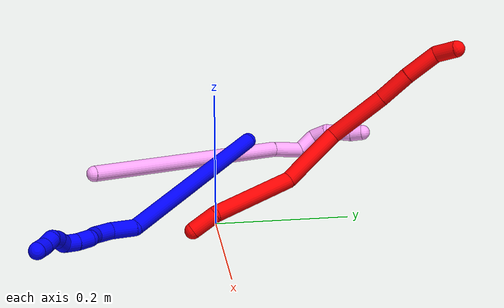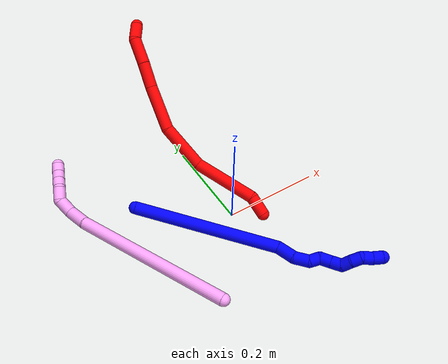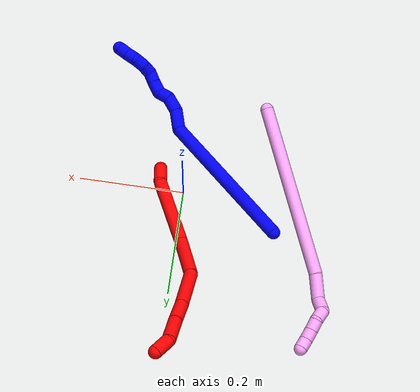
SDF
<sdf version="1.7">
 <world name="default">
  <model name="photoneo_s_sensor">
   <static>1</static>
   <pose>0 0 2 1.57079 1.57079 3.14159</pose>
   <link name="link">
    <inertial><mass>0.1</mass></inertial>
    <sensor name="sensor" type="depth">
     <update_rate>30</update_rate>
     <camera>
      <horizontal_fov>1.22</horizontal_fov>
      <image><width>1920</width><height>1200</height><format>B8G8R8</format></image>
      <clip><near>0.1</near><far>4</far></clip>
      <depth_camera><output>points</output></depth_camera>
     </camera>
     <plugin name="camera_plugin" filename="libgazebo_ros_depth_camera.so">
      <baseline>0.2</baseline>
      <alwaysOn>1</alwaysOn>
      <updateRate>0.0</updateRate>
      <cameraName>camera_ir</cameraName>
      <imageTopicName>/camera/color/image_raw</imageTopicName>
      <cameraInfoTopicName>/camera/color/camera_info</cameraInfoTopicName>
      <depthImageTopicName>/camera/depth/image_raw</depthImageTopicName>
      <depthImageCameraInfoTopicName>/camera/depth/camera_info</depthImageCameraInfoTopicName>
      <pointCloudTopicName>/camera/depth/points</pointCloudTopicName>
      <frameName>fr_optical</frameName>
      <pointCloudCutoff>0.1</pointCloudCutoff>
      <pointCloudCutoffMax>2.0</pointCloudCutoffMax>
      <distortionK1>0</distortionK1>
      <distortionK2>0</distortionK2>
      <distortionK3>0</distortionK3>
      <distortionT1>0</distortionT1>
      <distortionT2>0</distortionT2>
      <CxPrime>0</CxPrime>
      <Cx>0</Cx>
      <Cy>0</Cy>
      <focalLength>0</focalLength>
      <hackBaseline>0</hackBaseline>
     </plugin>
    </sensor>
   </link>
  </model>
  <model name="bin">
   <static>1</static>
   <link name="bottom">
    <collision name="collision-bottom">
     <pose>0 0 -0.01 0 -0 0</pose>
     <geometry><box><size>0.8 0.6 0.02</size></box></geometry>
     <surface>
      <friction><ode><mu>100</mu><mu2>100</mu2></ode></friction>
      <contact><collide_bitmask>65535</collide_bitmask></contact>
     </surface>
    </collision>
   </link>
   <link name="west_wall">
    <collision name="collision-west_wall">
     <pose>-0.41 0 0.1 0 -0 0</pose>
     <geometry><box><size>0.02 0.6 0.2</size></box></geometry>
     <surface>
      <friction><ode><mu>100</mu><mu2>100</mu2></ode></friction>
      <contact><collide_bitmask>65535</collide_bitmask></contact>
     </surface>
    </collision>
   </link>
   <link name="east_wall">
    <collision name="collision-east_wall">
     <pose>0.41 0 0.1 0 -0 0</pose>
     <geometry><box><size>0.02 0.6 0.2</size></box></geometry>
     <surface>
      <friction><ode><mu>100</mu><mu2>100</mu2></ode></friction>
      <contact><collide_bitmask>65535</collide_bitmask></contact>
     </surface>
    </collision>
   </link>
   <link name="south_wall">
    <collision name="collision-south_wall">
     <pose>0 -0.31 0.1 0 -0 0</pose>
     <geometry><box><size>0.8 0.02 0.2</size></box></geometry>
     <surface>
      <friction><ode><mu>100</mu><mu2>100</mu2></ode></friction>
      <contact><collide_bitmask>65535</collide_bitmask></contact>
     </surface>
    </collision>
   </link>
   <link name="north_wall">
    <collision name="collision-north_wall">
     <pose>0 0.31 0.1 0 -0 0</pose>
     <geometry><box><size>0.8 0.02 0.2</size></box></geometry>
     <surface>
      <friction><ode><mu>100</mu><mu2>100</mu2></ode></friction>
      <contact><collide_bitmask>65535</collide_bitmask></contact>
     </surface>
    </collision>
   </link>
  </model>
  <model name="1">
   <static>0</static>
   <link name="1">
    <collision name="collision-cylinder-e_1_1_4">
     <pose>0.108842 -0.064272 0.068833 0.75115 0.85752 0.356648</pose>
     <geometry><cylinder><radius>0.0125</radius><length>0.287858</length></cylinder></geometry>
     <surface>
      <friction><ode><mu>1.16</mu><mu2>1.16</mu2><slip1>0</slip1><slip2>0</slip2></ode></friction>
      <contact><ode><kp>1e+06</kp><kd>1</kd><max_vel>0</max_vel><min_depth>0.001</min_depth></ode></contact>
     </surface>
    </collision>
    <visual name="visual-cylinder-e_1_1_4">
     <pose>0.108842 -0.064272 0.068833 0.75115 0.85752 0.356648</pose>
     <geometry><cylinder><radius>0.0125</radius><length>0.287858</length></cylinder></geometry>
     <material><ambient>0 0 1 1</ambient></material>
    </visual>
    <collision name="collision-cylinder-e_2_4_5">
     <pose>0.226464 -0.144867 0.142081 1.30662 0.478909 0.369485</pose>
     <geometry><cylinder><radius>0.0125</radius><length>0.038105</length></cylinder></geometry>
     <surface>
      <friction><ode><mu>1.16</mu><mu2>1.16</mu2><slip1>0</slip1><slip2>0</slip2></ode></friction>
      <contact><ode><kp>1e+06</kp><kd>1</kd><max_vel>0</max_vel><min_depth>0.001</min_depth></ode></contact>
     </surface>
    </collision>
    <visual name="visual-cylinder-e_2_4_5">
     <pose>0.226464 -0.144867 0.142081 1.30662 0.478909 0.369485</pose>
     <geometry><cylinder><radius>0.0125</radius><length>0.038105</length></cylinder></geometry>
     <material><ambient>0 0 1 1</ambient></material>
    </visual>
    <collision name="collision-cylinder-e_3_5_6">
     <pose>0.243281 -0.170931 0.154415 0.888198 0.569486 0.276749</pose>
     <geometry><cylinder><radius>0.0125</radius><length>0.029812</length></cylinder></geometry>
     <surface>
      <friction><ode><mu>1.16</mu><mu2>1.16</mu2><slip1>0</slip1><slip2>0</slip2></ode></friction>
      <contact><ode><kp>1e+06</kp><kd>1</kd><max_vel>0</max_vel><min_depth>0.001</min_depth></ode></contact>
     </surface>
    </collision>
    <visual name="visual-cylinder-e_3_5_6">
     <pose>0.243281 -0.170931 0.154415 0.888198 0.569486 0.276749</pose>
     <geometry><cylinder><radius>0.0125</radius><length>0.029812</length></cylinder></geometry>
     <material><ambient>0 0 1 1</ambient></material>
    </visual>
    <collision name="collision-cylinder-e_4_6_7">
     <pose>0.255852 -0.182697 0.171353 0.220964 0.455997 0.051469</pose>
     <geometry><cylinder><radius>0.0125</radius><length>0.020591</length></cylinder></geometry>
     <surface>
      <friction><ode><mu>1.16</mu><mu2>1.16</mu2><slip1>0</slip1><slip2>0</slip2></ode></friction>
      <contact><ode><kp>1e+06</kp><kd>1</kd><max_vel>0</max_vel><min_depth>0.001</min_depth></ode></contact>
     </surface>
    </collision>
    <visual name="visual-cylinder-e_4_6_7">
     <pose>0.255852 -0.182697 0.171353 0.220964 0.455997 0.051469</pose>
     <geometry><cylinder><radius>0.0125</radius><length>0.020591</length></cylinder></geometry>
     <material><ambient>0 0 1 1</ambient></material>
    </visual>
    <collision name="collision-cylinder-e_5_7_8">
     <pose>0.266939 -0.192554 0.185535 0.987901 0.60976 0.335717</pose>
     <geometry><cylinder><radius>0.0125</radius><length>0.022885</length></cylinder></geometry>
     <surface>
      <friction><ode><mu>1.16</mu><mu2>1.16</mu2><slip1>0</slip1><slip2>0</slip2></ode></friction>
      <contact><ode><kp>1e+06</kp><kd>1</kd><max_vel>0</max_vel><min_depth>0.001</min_depth></ode></contact>
     </surface>
    </collision>
    <visual name="visual-cylinder-e_5_7_8">
     <pose>0.266939 -0.192554 0.185535 0.987901 0.60976 0.335717</pose>
     <geometry><cylinder><radius>0.0125</radius><length>0.022885</length></cylinder></geometry>
     <material><ambient>0 0 1 1</ambient></material>
    </visual>
    <collision name="collision-cylinder-e_6_8_9">
     <pose>0.278228 -0.208187 0.195627 1.00728 0.474258 0.264789</pose>
     <geometry><cylinder><radius>0.0125</radius><length>0.020745</length></cylinder></geometry>
     <surface>
      <friction><ode><mu>1.16</mu><mu2>1.16</mu2><slip1>0</slip1><slip2>0</slip2></ode></friction>
      <contact><ode><kp>1e+06</kp><kd>1</kd><max_vel>0</max_vel><min_depth>0.001</min_depth></ode></contact>
     </surface>
    </collision>
    <visual name="visual-cylinder-e_6_8_9">
     <pose>0.278228 -0.208187 0.195627 1.00728 0.474258 0.264789</pose>
     <geometry><cylinder><radius>0.0125</radius><length>0.020745</length></cylinder></geometry>
     <material><ambient>0 0 1 1</ambient></material>
    </visual>
    <collision name="collision-cylinder-e_7_9_10">
     <pose>0.282826 -0.220637 0.209409 0.483601 -0.01387 -0.003421</pose>
     <geometry><cylinder><radius>0.0125</radius><length>0.020001</length></cylinder></geometry>
     <surface>
      <friction><ode><mu>1.16</mu><mu2>1.16</mu2><slip1>0</slip1><slip2>0</slip2></ode></friction>
      <contact><ode><kp>1e+06</kp><kd>1</kd><max_vel>0</max_vel><min_depth>0.001</min_depth></ode></contact>
     </surface>
    </collision>
    <visual name="visual-cylinder-e_7_9_10">
     <pose>0.282826 -0.220637 0.209409 0.483601 -0.01387 -0.003421</pose>
     <geometry><cylinder><radius>0.0125</radius><length>0.020001</length></cylinder></geometry>
     <material><ambient>0 0 1 1</ambient></material>
    </visual>
    <collision name="collision-cylinder-e_8_10_11">
     <pose>0.284891 -0.228873 0.227333 0.376485 0.222205 0.042498</pose>
     <geometry><cylinder><radius>0.0125</radius><length>0.02</length></cylinder></geometry>
     <surface>
      <friction><ode><mu>1.16</mu><mu2>1.16</mu2><slip1>0</slip1><slip2>0</slip2></ode></friction>
      <contact><ode><kp>1e+06</kp><kd>1</kd><max_vel>0</max_vel><min_depth>0.001</min_depth></ode></contact>
     </surface>
    </collision>
    <visual name="visual-cylinder-e_8_10_11">
     <pose>0.284891 -0.228873 0.227333 0.376485 0.222205 0.042498</pose>
     <geometry><cylinder><radius>0.0125</radius><length>0.02</length></cylinder></geometry>
     <material><ambient>0 0 1 1</ambient></material>
    </visual>
    <collision name="collision-cylinder-e_9_11_12">
     <pose>0.294439 -0.235044 0.242682 0.390711 0.824617 0.172666</pose>
     <geometry><cylinder><radius>0.0125</radius><length>0.020002</length></cylinder></geometry>
     <surface>
      <friction><ode><mu>1.16</mu><mu2>1.16</mu2><slip1>0</slip1><slip2>0</slip2></ode></friction>
      <contact><ode><kp>1e+06</kp><kd>1</kd><max_vel>0</max_vel><min_depth>0.001</min_depth></ode></contact>
     </surface>
    </collision>
    <visual name="visual-cylinder-e_9_11_12">
     <pose>0.294439 -0.235044 0.242682 0.390711 0.824617 0.172666</pose>
     <geometry><cylinder><radius>0.0125</radius><length>0.020002</length></cylinder></geometry>
     <material><ambient>0 0 1 1</ambient></material>
    </visual>
    <collision name="collision-cylinder-e_10_12_2">
     <pose>0.307498 -0.240838 0.256512 0.401579 0.608377 0.127617</pose>
     <geometry><cylinder><radius>0.0125</radius><length>0.020001</length></cylinder></geometry>
     <surface>
      <friction><ode><mu>1.16</mu><mu2>1.16</mu2><slip1>0</slip1><slip2>0</slip2></ode></friction>
      <contact><ode><kp>1e+06</kp><kd>1</kd><max_vel>0</max_vel><min_depth>0.001</min_depth></ode></contact>
     </surface>
    </collision>
    <visual name="visual-cylinder-e_10_12_2">
     <pose>0.307498 -0.240838 0.256512 0.401579 0.608377 0.127617</pose>
     <geometry><cylinder><radius>0.0125</radius><length>0.020001</length></cylinder></geometry>
     <material><ambient>0 0 1 1</ambient></material>
    </visual>
    <collision name="collision-sphere-2">
     <pose>0.313214 -0.244045 0.264066 0 -0 0</pose>
     <geometry><sphere><radius>0.0125</radius></sphere></geometry>
     <surface>
      <friction><ode><mu>1.16</mu><mu2>1.16</mu2><slip1>0</slip1><slip2>0</slip2></ode></friction>
      <contact><ode><kp>1e+06</kp><kd>1</kd><max_vel>0</max_vel><min_depth>0.001</min_depth></ode></contact>
     </surface>
    </collision>
    <visual name="visual-sphere-2">
     <pose>0.313214 -0.244045 0.264066 0 -0 0</pose>
     <geometry><sphere><radius>0.0125</radius></sphere></geometry>
     <material><ambient>0 0 1 1</ambient></material>
    </visual>
    <collision name="collision-sphere-12">
     <pose>0.301782 -0.23763 0.248959 0 -0 0</pose>
     <geometry><sphere><radius>0.0125</radius></sphere></geometry>
     <surface>
      <friction><ode><mu>1.16</mu><mu2>1.16</mu2><slip1>0</slip1><slip2>0</slip2></ode></friction>
      <contact><ode><kp>1e+06</kp><kd>1</kd><max_vel>0</max_vel><min_depth>0.001</min_depth></ode></contact>
     </surface>
    </collision>
    <visual name="visual-sphere-12">
     <pose>0.301782 -0.23763 0.248959 0 -0 0</pose>
     <geometry><sphere><radius>0.0125</radius></sphere></geometry>
     <material><ambient>0 0 1 1</ambient></material>
    </visual>
    <collision name="collision-sphere-11">
     <pose>0.287095 -0.232459 0.236404 0 -0 0</pose>
     <geometry><sphere><radius>0.0125</radius></sphere></geometry>
     <surface>
      <friction><ode><mu>1.16</mu><mu2>1.16</mu2><slip1>0</slip1><slip2>0</slip2></ode></friction>
      <contact><ode><kp>1e+06</kp><kd>1</kd><max_vel>0</max_vel><min_depth>0.001</min_depth></ode></contact>
     </surface>
    </collision>
    <visual name="visual-sphere-11">
     <pose>0.287095 -0.232459 0.236404 0 -0 0</pose>
     <geometry><sphere><radius>0.0125</radius></sphere></geometry>
     <material><ambient>0 0 1 1</ambient></material>
    </visual>
    <collision name="collision-sphere-10">
     <pose>0.282688 -0.225287 0.218262 0 -0 0</pose>
     <geometry><sphere><radius>0.0125</radius></sphere></geometry>
     <surface>
      <friction><ode><mu>1.16</mu><mu2>1.16</mu2><slip1>0</slip1><slip2>0</slip2></ode></friction>
      <contact><ode><kp>1e+06</kp><kd>1</kd><max_vel>0</max_vel><min_depth>0.001</min_depth></ode></contact>
     </surface>
    </collision>
    <visual name="visual-sphere-10">
     <pose>0.282688 -0.225287 0.218262 0 -0 0</pose>
     <geometry><sphere><radius>0.0125</radius></sphere></geometry>
     <material><ambient>0 0 1 1</ambient></material>
    </visual>
    <collision name="collision-sphere-9">
     <pose>0.282965 -0.215987 0.200556 0 -0 0</pose>
     <geometry><sphere><radius>0.0125</radius></sphere></geometry>
     <surface>
      <friction><ode><mu>1.16</mu><mu2>1.16</mu2><slip1>0</slip1><slip2>0</slip2></ode></friction>
      <contact><ode><kp>1e+06</kp><kd>1</kd><max_vel>0</max_vel><min_depth>0.001</min_depth></ode></contact>
     </surface>
    </collision>
    <visual name="visual-sphere-9">
     <pose>0.282965 -0.215987 0.200556 0 -0 0</pose>
     <geometry><sphere><radius>0.0125</radius></sphere></geometry>
     <material><ambient>0 0 1 1</ambient></material>
    </visual>
    <collision name="collision-sphere-4">
     <pose>0.217685 -0.128545 0.137666 0 -0 0</pose>
     <geometry><sphere><radius>0.0125</radius></sphere></geometry>
     <surface>
      <friction><ode><mu>1.16</mu><mu2>1.16</mu2><slip1>0</slip1><slip2>0</slip2></ode></friction>
      <contact><ode><kp>1e+06</kp><kd>1</kd><max_vel>0</max_vel><min_depth>0.001</min_depth></ode></contact>
     </surface>
    </collision>
    <visual name="visual-sphere-4">
     <pose>0.217685 -0.128545 0.137666 0 -0 0</pose>
     <geometry><sphere><radius>0.0125</radius></sphere></geometry>
     <material><ambient>0 0 1 1</ambient></material>
    </visual>
    <collision name="collision-sphere-1">
     <geometry><sphere><radius>0.0125</radius></sphere></geometry>
     <surface>
      <friction><ode><mu>1.16</mu><mu2>1.16</mu2><slip1>0</slip1><slip2>0</slip2></ode></friction>
      <contact><ode><kp>1e+06</kp><kd>1</kd><max_vel>0</max_vel><min_depth>0.001</min_depth></ode></contact>
     </surface>
    </collision>
    <visual name="visual-sphere-1">
     <geometry><sphere><radius>0.0125</radius></sphere></geometry>
     <material><ambient>0 0 1 1</ambient></material>
    </visual>
    <collision name="collision-sphere-8">
     <pose>0.273491 -0.200386 0.190698 0 -0 0</pose>
     <geometry><sphere><radius>0.0125</radius></sphere></geometry>
     <surface>
      <friction><ode><mu>1.16</mu><mu2>1.16</mu2><slip1>0</slip1><slip2>0</slip2></ode></friction>
      <contact><ode><kp>1e+06</kp><kd>1</kd><max_vel>0</max_vel><min_depth>0.001</min_depth></ode></contact>
     </surface>
    </collision>
    <visual name="visual-sphere-8">
     <pose>0.273491 -0.200386 0.190698 0 -0 0</pose>
     <geometry><sphere><radius>0.0125</radius></sphere></geometry>
     <material><ambient>0 0 1 1</ambient></material>
    </visual>
    <collision name="collision-sphere-5">
     <pose>0.235244 -0.16119 0.146496 0 -0 0</pose>
     <geometry><sphere><radius>0.0125</radius></sphere></geometry>
     <surface>
      <friction><ode><mu>1.16</mu><mu2>1.16</mu2><slip1>0</slip1><slip2>0</slip2></ode></friction>
      <contact><ode><kp>1e+06</kp><kd>1</kd><max_vel>0</max_vel><min_depth>0.001</min_depth></ode></contact>
     </surface>
    </collision>
    <visual name="visual-sphere-5">
     <pose>0.235244 -0.16119 0.146496 0 -0 0</pose>
     <geometry><sphere><radius>0.0125</radius></sphere></geometry>
     <material><ambient>0 0 1 1</ambient></material>
    </visual>
    <collision name="collision-sphere-6">
     <pose>0.251318 -0.180671 0.162334 0 -0 0</pose>
     <geometry><sphere><radius>0.0125</radius></sphere></geometry>
     <surface>
      <friction><ode><mu>1.16</mu><mu2>1.16</mu2><slip1>0</slip1><slip2>0</slip2></ode></friction>
      <contact><ode><kp>1e+06</kp><kd>1</kd><max_vel>0</max_vel><min_depth>0.001</min_depth></ode></contact>
     </surface>
    </collision>
    <visual name="visual-sphere-6">
     <pose>0.251318 -0.180671 0.162334 0 -0 0</pose>
     <geometry><sphere><radius>0.0125</radius></sphere></geometry>
     <material><ambient>0 0 1 1</ambient></material>
    </visual>
    <collision name="collision-sphere-7">
     <pose>0.260386 -0.184723 0.180372 0 -0 0</pose>
     <geometry><sphere><radius>0.0125</radius></sphere></geometry>
     <surface>
      <friction><ode><mu>1.16</mu><mu2>1.16</mu2><slip1>0</slip1><slip2>0</slip2></ode></friction>
      <contact><ode><kp>1e+06</kp><kd>1</kd><max_vel>0</max_vel><min_depth>0.001</min_depth></ode></contact>
     </surface>
    </collision>
    <visual name="visual-sphere-7">
     <pose>0.260386 -0.184723 0.180372 0 -0 0</pose>
     <geometry><sphere><radius>0.0125</radius></sphere></geometry>
     <material><ambient>0 0 1 1</ambient></material>
    </visual>
    <inertial>
     <pose>0.175513 -0.120227 0.120767 0 -0 0</pose>
     <mass>0.5</mass>
     <inertia>
      <ixx>0.001728</ixx>
      <ixy>0</ixy>
      <ixz>0</ixz>
      <iyy>0.002185</iyy>
      <iyz>0</iyz>
      <izz>-0.000595</izz>
     </inertia>
    </inertial>
   </link>
   <pose>-0.179378 0.071889 0.066837 -0.53611 0.897169 -0.610195</pose>
  </model>
  <model name="2">
   <static>0</static>
   <link name="2">
    <collision name="collision-cylinder-e_1_1_4">
     <pose>-0.001969 0.001072 0.020242 -0.052922 -0.096819 0.002565</pose>
     <geometry><cylinder><radius>0.0125</radius><length>0.040732</length></cylinder></geometry>
     <surface>
      <friction><ode><mu>1.16</mu><mu2>1.16</mu2><slip1>0</slip1><slip2>0</slip2></ode></friction>
      <contact><ode><kp>1e+06</kp><kd>1</kd><max_vel>0</max_vel><min_depth>0.001</min_depth></ode></contact>
     </surface>
    </collision>
    <visual name="visual-cylinder-e_1_1_4">
     <pose>-0.001969 0.001072 0.020242 -0.052922 -0.096819 0.002565</pose>
     <geometry><cylinder><radius>0.0125</radius><length>0.040732</length></cylinder></geometry>
     <material><ambient>1 0 0 1</ambient></material>
    </visual>
    <collision name="collision-cylinder-e_2_4_5">
     <pose>-0.007647 0.035342 0.097527 -0.527059 -0.056149 0.015153</pose>
     <geometry><cylinder><radius>0.0125</radius><length>0.132208</length></cylinder></geometry>
     <surface>
      <friction><ode><mu>1.16</mu><mu2>1.16</mu2><slip1>0</slip1><slip2>0</slip2></ode></friction>
      <contact><ode><kp>1e+06</kp><kd>1</kd><max_vel>0</max_vel><min_depth>0.001</min_depth></ode></contact>
     </surface>
    </collision>
    <visual name="visual-cylinder-e_2_4_5">
     <pose>-0.007647 0.035342 0.097527 -0.527059 -0.056149 0.015153</pose>
     <geometry><cylinder><radius>0.0125</radius><length>0.132208</length></cylinder></geometry>
     <material><ambient>1 0 0 1</ambient></material>
    </visual>
    <collision name="collision-cylinder-e_3_5_6">
     <pose>-0.024921 0.074855 0.200776 -0.135835 -0.283055 0.019383</pose>
     <geometry><cylinder><radius>0.0125</radius><length>0.097135</length></cylinder></geometry>
     <surface>
      <friction><ode><mu>1.16</mu><mu2>1.16</mu2><slip1>0</slip1><slip2>0</slip2></ode></friction>
      <contact><ode><kp>1e+06</kp><kd>1</kd><max_vel>0</max_vel><min_depth>0.001</min_depth></ode></contact>
     </surface>
    </collision>
    <visual name="visual-cylinder-e_3_5_6">
     <pose>-0.024921 0.074855 0.200776 -0.135835 -0.283055 0.019383</pose>
     <geometry><cylinder><radius>0.0125</radius><length>0.097135</length></cylinder></geometry>
     <material><ambient>1 0 0 1</ambient></material>
    </visual>
    <collision name="collision-cylinder-e_4_6_7">
     <pose>-0.040608 0.074345 0.292365 0.149274 -0.046213 -0.003456</pose>
     <geometry><cylinder><radius>0.0125</radius><length>0.091886</length></cylinder></geometry>
     <surface>
      <friction><ode><mu>1.16</mu><mu2>1.16</mu2><slip1>0</slip1><slip2>0</slip2></ode></friction>
      <contact><ode><kp>1e+06</kp><kd>1</kd><max_vel>0</max_vel><min_depth>0.001</min_depth></ode></contact>
     </surface>
    </collision>
    <visual name="visual-cylinder-e_4_6_7">
     <pose>-0.040608 0.074345 0.292365 0.149274 -0.046213 -0.003456</pose>
     <geometry><cylinder><radius>0.0125</radius><length>0.091886</length></cylinder></geometry>
     <material><ambient>1 0 0 1</ambient></material>
    </visual>
    <collision name="collision-cylinder-e_5_7_8">
     <pose>-0.044849 0.061682 0.362741 0.229475 -0.082348 -0.009495</pose>
     <geometry><cylinder><radius>0.0125</radius><length>0.051505</length></cylinder></geometry>
     <surface>
      <friction><ode><mu>1.16</mu><mu2>1.16</mu2><slip1>0</slip1><slip2>0</slip2></ode></friction>
      <contact><ode><kp>1e+06</kp><kd>1</kd><max_vel>0</max_vel><min_depth>0.001</min_depth></ode></contact>
     </surface>
    </collision>
    <visual name="visual-cylinder-e_5_7_8">
     <pose>-0.044849 0.061682 0.362741 0.229475 -0.082348 -0.009495</pose>
     <geometry><cylinder><radius>0.0125</radius><length>0.051505</length></cylinder></geometry>
     <material><ambient>1 0 0 1</ambient></material>
    </visual>
    <collision name="collision-cylinder-e_6_8_9">
     <pose>-0.047849 0.051544 0.413618 0.164618 -0.033608 -0.002773</pose>
     <geometry><cylinder><radius>0.0125</radius><length>0.052508</length></cylinder></geometry>
     <surface>
      <friction><ode><mu>1.16</mu><mu2>1.16</mu2><slip1>0</slip1><slip2>0</slip2></ode></friction>
      <contact><ode><kp>1e+06</kp><kd>1</kd><max_vel>0</max_vel><min_depth>0.001</min_depth></ode></contact>
     </surface>
    </collision>
    <visual name="visual-cylinder-e_6_8_9">
     <pose>-0.047849 0.051544 0.413618 0.164618 -0.033608 -0.002773</pose>
     <geometry><cylinder><radius>0.0125</radius><length>0.052508</length></cylinder></geometry>
     <material><ambient>1 0 0 1</ambient></material>
    </visual>
    <collision name="collision-cylinder-e_7_9_2">
     <pose>-0.04131 0.040913 0.453441 0.426304 0.451422 0.099318</pose>
     <geometry><cylinder><radius>0.0125</radius><length>0.034026</length></cylinder></geometry>
     <surface>
      <friction><ode><mu>1.16</mu><mu2>1.16</mu2><slip1>0</slip1><slip2>0</slip2></ode></friction>
      <contact><ode><kp>1e+06</kp><kd>1</kd><max_vel>0</max_vel><min_depth>0.001</min_depth></ode></contact>
     </surface>
    </collision>
    <visual name="visual-cylinder-e_7_9_2">
     <pose>-0.04131 0.040913 0.453441 0.426304 0.451422 0.099318</pose>
     <geometry><cylinder><radius>0.0125</radius><length>0.034026</length></cylinder></geometry>
     <material><ambient>1 0 0 1</ambient></material>
    </visual>
    <collision name="collision-sphere-2">
     <pose>-0.033888 0.034583 0.467379 0 -0 0</pose>
     <geometry><sphere><radius>0.0125</radius></sphere></geometry>
     <surface>
      <friction><ode><mu>1.16</mu><mu2>1.16</mu2><slip1>0</slip1><slip2>0</slip2></ode></friction>
      <contact><ode><kp>1e+06</kp><kd>1</kd><max_vel>0</max_vel><min_depth>0.001</min_depth></ode></contact>
     </surface>
    </collision>
    <visual name="visual-sphere-2">
     <pose>-0.033888 0.034583 0.467379 0 -0 0</pose>
     <geometry><sphere><radius>0.0125</radius></sphere></geometry>
     <material><ambient>1 0 0 1</ambient></material>
    </visual>
    <collision name="collision-sphere-9">
     <pose>-0.048732 0.047244 0.439502 0 -0 0</pose>
     <geometry><sphere><radius>0.0125</radius></sphere></geometry>
     <surface>
      <friction><ode><mu>1.16</mu><mu2>1.16</mu2><slip1>0</slip1><slip2>0</slip2></ode></friction>
      <contact><ode><kp>1e+06</kp><kd>1</kd><max_vel>0</max_vel><min_depth>0.001</min_depth></ode></contact>
     </surface>
    </collision>
    <visual name="visual-sphere-9">
     <pose>-0.048732 0.047244 0.439502 0 -0 0</pose>
     <geometry><sphere><radius>0.0125</radius></sphere></geometry>
     <material><ambient>1 0 0 1</ambient></material>
    </visual>
    <collision name="collision-sphere-4">
     <pose>-0.003937 0.002145 0.040484 0 -0 0</pose>
     <geometry><sphere><radius>0.0125</radius></sphere></geometry>
     <surface>
      <friction><ode><mu>1.16</mu><mu2>1.16</mu2><slip1>0</slip1><slip2>0</slip2></ode></friction>
      <contact><ode><kp>1e+06</kp><kd>1</kd><max_vel>0</max_vel><min_depth>0.001</min_depth></ode></contact>
     </surface>
    </collision>
    <visual name="visual-sphere-4">
     <pose>-0.003937 0.002145 0.040484 0 -0 0</pose>
     <geometry><sphere><radius>0.0125</radius></sphere></geometry>
     <material><ambient>1 0 0 1</ambient></material>
    </visual>
    <collision name="collision-sphere-1">
     <geometry><sphere><radius>0.0125</radius></sphere></geometry>
     <surface>
      <friction><ode><mu>1.16</mu><mu2>1.16</mu2><slip1>0</slip1><slip2>0</slip2></ode></friction>
      <contact><ode><kp>1e+06</kp><kd>1</kd><max_vel>0</max_vel><min_depth>0.001</min_depth></ode></contact>
     </surface>
    </collision>
    <visual name="visual-sphere-1">
     <geometry><sphere><radius>0.0125</radius></sphere></geometry>
     <material><ambient>1 0 0 1</ambient></material>
    </visual>
    <collision name="collision-sphere-8">
     <pose>-0.046967 0.055844 0.387733 0 -0 0</pose>
     <geometry><sphere><radius>0.0125</radius></sphere></geometry>
     <surface>
      <friction><ode><mu>1.16</mu><mu2>1.16</mu2><slip1>0</slip1><slip2>0</slip2></ode></friction>
      <contact><ode><kp>1e+06</kp><kd>1</kd><max_vel>0</max_vel><min_depth>0.001</min_depth></ode></contact>
     </surface>
    </collision>
    <visual name="visual-sphere-8">
     <pose>-0.046967 0.055844 0.387733 0 -0 0</pose>
     <geometry><sphere><radius>0.0125</radius></sphere></geometry>
     <material><ambient>1 0 0 1</ambient></material>
    </visual>
    <collision name="collision-sphere-5">
     <pose>-0.011357 0.06854 0.15457 0 -0 0</pose>
     <geometry><sphere><radius>0.0125</radius></sphere></geometry>
     <surface>
      <friction><ode><mu>1.16</mu><mu2>1.16</mu2><slip1>0</slip1><slip2>0</slip2></ode></friction>
      <contact><ode><kp>1e+06</kp><kd>1</kd><max_vel>0</max_vel><min_depth>0.001</min_depth></ode></contact>
     </surface>
    </collision>
    <visual name="visual-sphere-5">
     <pose>-0.011357 0.06854 0.15457 0 -0 0</pose>
     <geometry><sphere><radius>0.0125</radius></sphere></geometry>
     <material><ambient>1 0 0 1</ambient></material>
    </visual>
    <collision name="collision-sphere-6">
     <pose>-0.038486 0.08117 0.246981 0 -0 0</pose>
     <geometry><sphere><radius>0.0125</radius></sphere></geometry>
     <surface>
      <friction><ode><mu>1.16</mu><mu2>1.16</mu2><slip1>0</slip1><slip2>0</slip2></ode></friction>
      <contact><ode><kp>1e+06</kp><kd>1</kd><max_vel>0</max_vel><min_depth>0.001</min_depth></ode></contact>
     </surface>
    </collision>
    <visual name="visual-sphere-6">
     <pose>-0.038486 0.08117 0.246981 0 -0 0</pose>
     <geometry><sphere><radius>0.0125</radius></sphere></geometry>
     <material><ambient>1 0 0 1</ambient></material>
    </visual>
    <collision name="collision-sphere-7">
     <pose>-0.042731 0.06752 0.337748 0 -0 0</pose>
     <geometry><sphere><radius>0.0125</radius></sphere></geometry>
     <surface>
      <friction><ode><mu>1.16</mu><mu2>1.16</mu2><slip1>0</slip1><slip2>0</slip2></ode></friction>
      <contact><ode><kp>1e+06</kp><kd>1</kd><max_vel>0</max_vel><min_depth>0.001</min_depth></ode></contact>
     </surface>
    </collision>
    <visual name="visual-sphere-7">
     <pose>-0.042731 0.06752 0.337748 0 -0 0</pose>
     <geometry><sphere><radius>0.0125</radius></sphere></geometry>
     <material><ambient>1 0 0 1</ambient></material>
    </visual>
    <inertial>
     <pose>-0.026943 0.052188 0.23183 0 -0 0</pose>
     <mass>0.5</mass>
     <inertia>
      <ixx>0.000383</ixx>
      <ixy>0</ixy>
      <ixz>0</ixz>
      <iyy>0.000364</iyy>
      <iyz>0</iyz>
      <izz>-1.9e-05</izz>
     </inertia>
    </inertial>
   </link>
   <pose>0.049711 -0.038583 0.011495 -0.833841 0.696715 0.549936</pose>
  </model>
  <model name="4">
   <static>0</static>
   <link name="4">
    <collision name="collision-cylinder-e_1_1_4">
     <pose>-0.003031 0.005099 0.165273 -0.030845 -0.01833 0.000283</pose>
     <geometry><cylinder><radius>0.0125</radius><length>0.330759</length></cylinder></geometry>
     <surface>
      <friction><ode><mu>1.16</mu><mu2>1.16</mu2><slip1>0</slip1><slip2>0</slip2></ode></friction>
      <contact><ode><kp>1e+06</kp><kd>1</kd><max_vel>0</max_vel><min_depth>0.001</min_depth></ode></contact>
     </surface>
    </collision>
    <visual name="visual-cylinder-e_1_1_4">
     <pose>-0.003031 0.005099 0.165273 -0.030845 -0.01833 0.000283</pose>
     <geometry><cylinder><radius>0.0125</radius><length>0.330759</length></cylinder></geometry>
     <material><ambient>1 0.65098 0.996078 1</ambient></material>
    </visual>
    <collision name="collision-cylinder-e_2_4_5">
     <pose>-0.009453 0.014752 0.354209 -0.190096 -0.139786 0.013348</pose>
     <geometry><cylinder><radius>0.0125</radius><length>0.048668</length></cylinder></geometry>
     <surface>
      <friction><ode><mu>1.16</mu><mu2>1.16</mu2><slip1>0</slip1><slip2>0</slip2></ode></friction>
      <contact><ode><kp>1e+06</kp><kd>1</kd><max_vel>0</max_vel><min_depth>0.001</min_depth></ode></contact>
     </surface>
    </collision>
    <visual name="visual-cylinder-e_2_4_5">
     <pose>-0.009453 0.014752 0.354209 -0.190096 -0.139786 0.013348</pose>
     <geometry><cylinder><radius>0.0125</radius><length>0.048668</length></cylinder></geometry>
     <material><ambient>1 0.65098 0.996078 1</ambient></material>
    </visual>
    <collision name="collision-cylinder-e_3_5_6">
     <pose>-0.003034 0.021844 0.390733 -0.19486 0.642395 -0.065017</pose>
     <geometry><cylinder><radius>0.0125</radius><length>0.032747</length></cylinder></geometry>
     <surface>
      <friction><ode><mu>1.16</mu><mu2>1.16</mu2><slip1>0</slip1><slip2>0</slip2></ode></friction>
      <contact><ode><kp>1e+06</kp><kd>1</kd><max_vel>0</max_vel><min_depth>0.001</min_depth></ode></contact>
     </surface>
    </collision>
    <visual name="visual-cylinder-e_3_5_6">
     <pose>-0.003034 0.021844 0.390733 -0.19486 0.642395 -0.065017</pose>
     <geometry><cylinder><radius>0.0125</radius><length>0.032747</length></cylinder></geometry>
     <material><ambient>1 0.65098 0.996078 1</ambient></material>
    </visual>
    <collision name="collision-cylinder-e_4_6_7">
     <pose>0.011464 0.034381 0.410767 -0.948496 0.364015 -0.188388</pose>
     <geometry><cylinder><radius>0.0125</radius><length>0.026336</length></cylinder></geometry>
     <surface>
      <friction><ode><mu>1.16</mu><mu2>1.16</mu2><slip1>0</slip1><slip2>0</slip2></ode></friction>
      <contact><ode><kp>1e+06</kp><kd>1</kd><max_vel>0</max_vel><min_depth>0.001</min_depth></ode></contact>
     </surface>
    </collision>
    <visual name="visual-cylinder-e_4_6_7">
     <pose>0.011464 0.034381 0.410767 -0.948496 0.364015 -0.188388</pose>
     <geometry><cylinder><radius>0.0125</radius><length>0.026336</length></cylinder></geometry>
     <material><ambient>1 0.65098 0.996078 1</ambient></material>
    </visual>
    <collision name="collision-cylinder-e_5_7_8">
     <pose>0.014977 0.0516 0.425335 -0.773498 -0.113235 0.046157</pose>
     <geometry><cylinder><radius>0.0125</radius><length>0.020803</length></cylinder></geometry>
     <surface>
      <friction><ode><mu>1.16</mu><mu2>1.16</mu2><slip1>0</slip1><slip2>0</slip2></ode></friction>
      <contact><ode><kp>1e+06</kp><kd>1</kd><max_vel>0</max_vel><min_depth>0.001</min_depth></ode></contact>
     </surface>
    </collision>
    <visual name="visual-cylinder-e_5_7_8">
     <pose>0.014977 0.0516 0.425335 -0.773498 -0.113235 0.046157</pose>
     <geometry><cylinder><radius>0.0125</radius><length>0.020803</length></cylinder></geometry>
     <material><ambient>1 0.65098 0.996078 1</ambient></material>
    </visual>
    <collision name="collision-cylinder-e_6_8_9">
     <pose>0.012726 0.066201 0.439787 -0.807798 -0.104891 0.044864</pose>
     <geometry><cylinder><radius>0.0125</radius><length>0.020538</length></cylinder></geometry>
     <surface>
      <friction><ode><mu>1.16</mu><mu2>1.16</mu2><slip1>0</slip1><slip2>0</slip2></ode></friction>
      <contact><ode><kp>1e+06</kp><kd>1</kd><max_vel>0</max_vel><min_depth>0.001</min_depth></ode></contact>
     </surface>
    </collision>
    <visual name="visual-cylinder-e_6_8_9">
     <pose>0.012726 0.066201 0.439787 -0.807798 -0.104891 0.044864</pose>
     <geometry><cylinder><radius>0.0125</radius><length>0.020538</length></cylinder></geometry>
     <material><ambient>1 0.65098 0.996078 1</ambient></material>
    </visual>
    <collision name="collision-cylinder-e_7_9_2">
     <pose>0.012643 0.08121 0.45335 -0.86461 0.098615 -0.045531</pose>
     <geometry><cylinder><radius>0.0125</radius><length>0.020148</length></cylinder></geometry>
     <surface>
      <friction><ode><mu>1.16</mu><mu2>1.16</mu2><slip1>0</slip1><slip2>0</slip2></ode></friction>
      <contact><ode><kp>1e+06</kp><kd>1</kd><max_vel>0</max_vel><min_depth>0.001</min_depth></ode></contact>
     </surface>
    </collision>
    <visual name="visual-cylinder-e_7_9_2">
     <pose>0.012643 0.08121 0.45335 -0.86461 0.098615 -0.045531</pose>
     <geometry><cylinder><radius>0.0125</radius><length>0.020148</length></cylinder></geometry>
     <material><ambient>1 0.65098 0.996078 1</ambient></material>
    </visual>
    <collision name="collision-sphere-2">
     <pose>0.013635 0.088838 0.459856 0 -0 0</pose>
     <geometry><sphere><radius>0.0125</radius></sphere></geometry>
     <surface>
      <friction><ode><mu>1.16</mu><mu2>1.16</mu2><slip1>0</slip1><slip2>0</slip2></ode></friction>
      <contact><ode><kp>1e+06</kp><kd>1</kd><max_vel>0</max_vel><min_depth>0.001</min_depth></ode></contact>
     </surface>
    </collision>
    <visual name="visual-sphere-2">
     <pose>0.013635 0.088838 0.459856 0 -0 0</pose>
     <geometry><sphere><radius>0.0125</radius></sphere></geometry>
     <material><ambient>1 0.65098 0.996078 1</ambient></material>
    </visual>
    <collision name="collision-sphere-9">
     <pose>0.011651 0.073583 0.446845 0 -0 0</pose>
     <geometry><sphere><radius>0.0125</radius></sphere></geometry>
     <surface>
      <friction><ode><mu>1.16</mu><mu2>1.16</mu2><slip1>0</slip1><slip2>0</slip2></ode></friction>
      <contact><ode><kp>1e+06</kp><kd>1</kd><max_vel>0</max_vel><min_depth>0.001</min_depth></ode></contact>
     </surface>
    </collision>
    <visual name="visual-sphere-9">
     <pose>0.011651 0.073583 0.446845 0 -0 0</pose>
     <geometry><sphere><radius>0.0125</radius></sphere></geometry>
     <material><ambient>1 0.65098 0.996078 1</ambient></material>
    </visual>
    <collision name="collision-sphere-4">
     <pose>-0.006062 0.010199 0.330546 0 -0 0</pose>
     <geometry><sphere><radius>0.0125</radius></sphere></geometry>
     <surface>
      <friction><ode><mu>1.16</mu><mu2>1.16</mu2><slip1>0</slip1><slip2>0</slip2></ode></friction>
      <contact><ode><kp>1e+06</kp><kd>1</kd><max_vel>0</max_vel><min_depth>0.001</min_depth></ode></contact>
     </surface>
    </collision>
    <visual name="visual-sphere-4">
     <pose>-0.006062 0.010199 0.330546 0 -0 0</pose>
     <geometry><sphere><radius>0.0125</radius></sphere></geometry>
     <material><ambient>1 0.65098 0.996078 1</ambient></material>
    </visual>
    <collision name="collision-sphere-1">
     <geometry><sphere><radius>0.0125</radius></sphere></geometry>
     <surface>
      <friction><ode><mu>1.16</mu><mu2>1.16</mu2><slip1>0</slip1><slip2>0</slip2></ode></friction>
      <contact><ode><kp>1e+06</kp><kd>1</kd><max_vel>0</max_vel><min_depth>0.001</min_depth></ode></contact>
     </surface>
    </collision>
    <visual name="visual-sphere-1">
     <geometry><sphere><radius>0.0125</radius></sphere></geometry>
     <material><ambient>1 0.65098 0.996078 1</ambient></material>
    </visual>
    <collision name="collision-sphere-8">
     <pose>0.013801 0.05882 0.432729 0 -0 0</pose>
     <geometry><sphere><radius>0.0125</radius></sphere></geometry>
     <surface>
      <friction><ode><mu>1.16</mu><mu2>1.16</mu2><slip1>0</slip1><slip2>0</slip2></ode></friction>
      <contact><ode><kp>1e+06</kp><kd>1</kd><max_vel>0</max_vel><min_depth>0.001</min_depth></ode></contact>
     </surface>
    </collision>
    <visual name="visual-sphere-8">
     <pose>0.013801 0.05882 0.432729 0 -0 0</pose>
     <geometry><sphere><radius>0.0125</radius></sphere></geometry>
     <material><ambient>1 0.65098 0.996078 1</ambient></material>
    </visual>
    <collision name="collision-sphere-5">
     <pose>-0.012843 0.019305 0.377872 0 -0 0</pose>
     <geometry><sphere><radius>0.0125</radius></sphere></geometry>
     <surface>
      <friction><ode><mu>1.16</mu><mu2>1.16</mu2><slip1>0</slip1><slip2>0</slip2></ode></friction>
      <contact><ode><kp>1e+06</kp><kd>1</kd><max_vel>0</max_vel><min_depth>0.001</min_depth></ode></contact>
     </surface>
    </collision>
    <visual name="visual-sphere-5">
     <pose>-0.012843 0.019305 0.377872 0 -0 0</pose>
     <geometry><sphere><radius>0.0125</radius></sphere></geometry>
     <material><ambient>1 0.65098 0.996078 1</ambient></material>
    </visual>
    <collision name="collision-sphere-6">
     <pose>0.006776 0.024382 0.403595 0 -0 0</pose>
     <geometry><sphere><radius>0.0125</radius></sphere></geometry>
     <surface>
      <friction><ode><mu>1.16</mu><mu2>1.16</mu2><slip1>0</slip1><slip2>0</slip2></ode></friction>
      <contact><ode><kp>1e+06</kp><kd>1</kd><max_vel>0</max_vel><min_depth>0.001</min_depth></ode></contact>
     </surface>
    </collision>
    <visual name="visual-sphere-6">
     <pose>0.006776 0.024382 0.403595 0 -0 0</pose>
     <geometry><sphere><radius>0.0125</radius></sphere></geometry>
     <material><ambient>1 0.65098 0.996078 1</ambient></material>
    </visual>
    <collision name="collision-sphere-7">
     <pose>0.016152 0.044379 0.41794 0 -0 0</pose>
     <geometry><sphere><radius>0.0125</radius></sphere></geometry>
     <surface>
      <friction><ode><mu>1.16</mu><mu2>1.16</mu2><slip1>0</slip1><slip2>0</slip2></ode></friction>
      <contact><ode><kp>1e+06</kp><kd>1</kd><max_vel>0</max_vel><min_depth>0.001</min_depth></ode></contact>
     </surface>
    </collision>
    <visual name="visual-sphere-7">
     <pose>0.016152 0.044379 0.41794 0 -0 0</pose>
     <geometry><sphere><radius>0.0125</radius></sphere></geometry>
     <material><ambient>1 0.65098 0.996078 1</ambient></material>
    </visual>
    <inertial>
     <pose>-0.000865 0.01619 0.245065 0 -0 0</pose>
     <mass>0.5</mass>
     <inertia>
      <ixx>0.003051</ixx>
      <ixy>0</ixy>
      <ixz>0</ixz>
      <iyy>0.003054</iyy>
      <iyz>0</iyz>
      <izz>-1.2e-05</izz>
     </inertia>
    </inertial>
   </link>
   <pose>-0.135721 -0.175662 0.038724 1.83718 -1.39599 -2.95863</pose>
  </model>
 </world>
</sdf>
